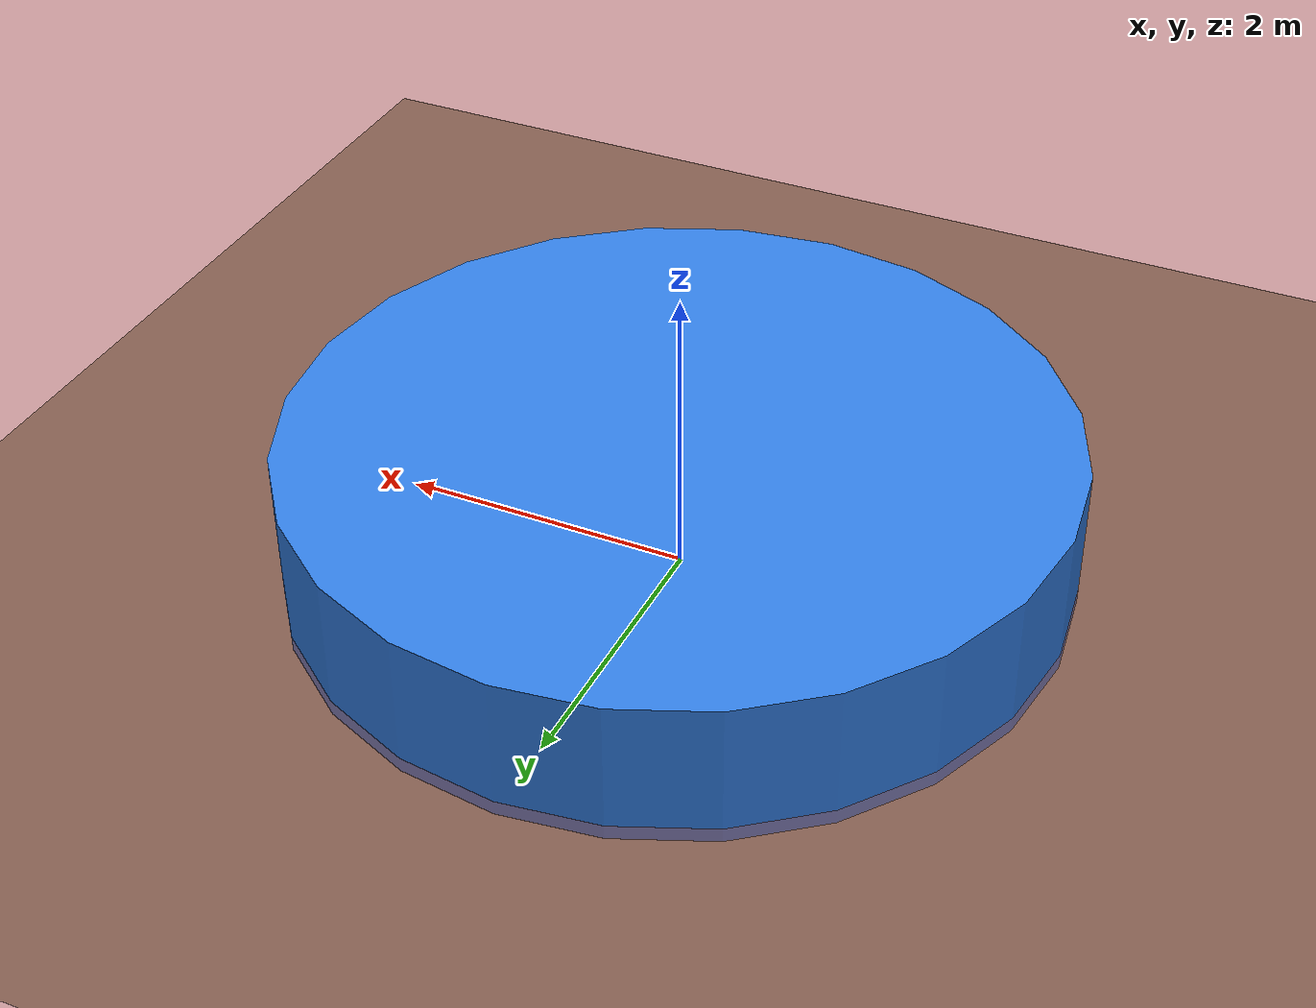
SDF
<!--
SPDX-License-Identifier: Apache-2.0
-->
<?xml version="1.0" ?>
<sdf version="1.9">
  <world name="bpi_keepout">
    <physics name="1ms" type="ignored">
      <max_step_size>0.001</max_step_size>
    </physics>
    <light type="directional" name="sun">
      <direction>-0.5 0.1 -0.9</direction>
      <diffuse>1 1 1 1</diffuse>
    </light>

    <model name="ground">
      <static>true</static>
      <link name="link">
        <collision name="c">
          <geometry><plane><normal>0 0 1</normal><size>6000 6000</size></plane></geometry>
        </collision>
        <visual name="v">
          <geometry><plane><normal>0 0 1</normal><size>6000 6000</size></plane></geometry>
          <material><ambient>0.3 0.3 0.3 1</ambient><diffuse>0.4 0.4 0.4 1</diffuse></material>
        </visual>
      </link>
    </model>

    <!-- The rectenna. A 5.2 m aperture, the Xidian figure quoted in
         gap-analysis.md, so the scale comparison below is against something
         real rather than something invented. -->
    <model name="rectenna">
      <static>true</static>
      <pose>0 0 0.5 0 0 0</pose>
      <link name="link">
        <visual name="v">
          <geometry><cylinder><radius>2.6</radius><length>1.0</length></cylinder></geometry>
          <material><ambient>0.1 0.4 0.7 1</ambient><diffuse>0.2 0.5 0.9 1</diffuse></material>
        </visual>
      </link>
    </model>

    <model name="keepout_1350m">
      <static>true</static>
      <pose>0 0 0.05 0 0 0</pose>
      <link name="link">
        <visual name="v">
          <geometry><cylinder><radius>1350</radius><length>0.1</length></cylinder></geometry>
          <material>
            <ambient>0.9 0.3 0.1 0.25</ambient>
            <diffuse>0.9 0.3 0.1 0.25</diffuse>
          </material>
          <transparency>0.75</transparency>
        </visual>
      </link>
    </model>
  </world>
</sdf>
